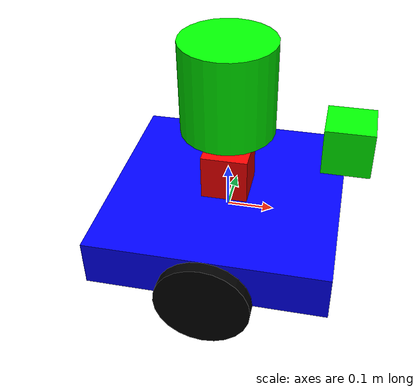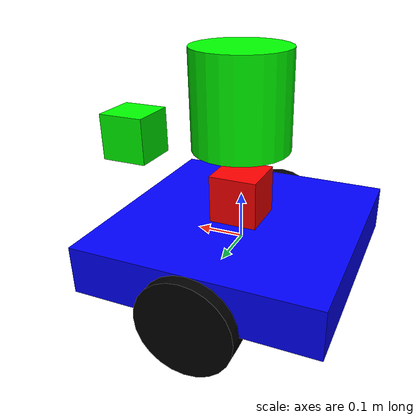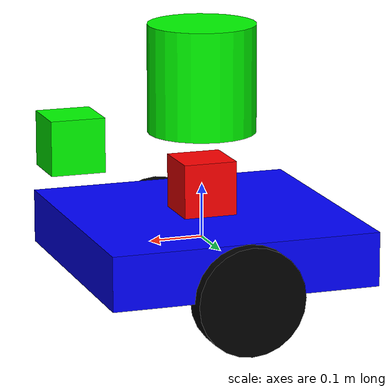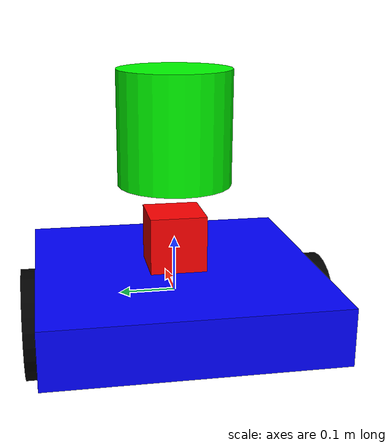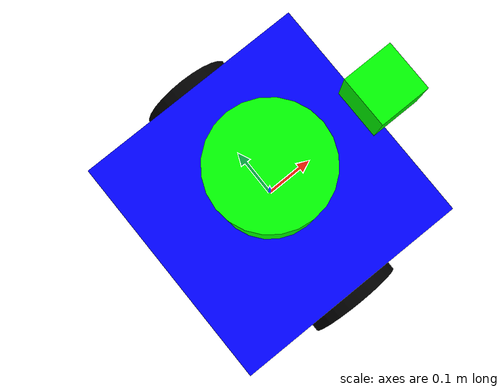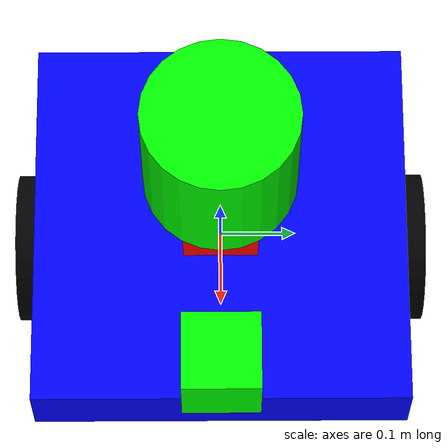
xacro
<?xml version="1.0"?>
<robot xmlns:xacro="http://www.ros.org/wiki/xacro" name="mj_robot">

  <!-- Define default materials -->
  <material name="blue">
    <color rgba="0 0 1 1"/>
  </material>
  <material name="black">
    <color rgba="0 0 0 1"/>
  </material>
  <material name="green">
    <color rgba="0 1 0 1"/>
  </material>
  <material name="red">
    <color rgba="1 0 0 1"/>
  </material>

  <!-- Define a macro for a wheel -->
  <xacro:macro name="wheel" params="name color xyz rpy">
    <link name="${name}">
      <visual>
        <geometry>
          <cylinder radius="0.1" length="0.05"/>
        </geometry>
        <material name="${color}"/>
      </visual>
      <collision>
        <geometry>
          <cylinder radius="0.1" length="0.05"/>
        </geometry>
      </collision>
    </link>
    <joint name="base_to_${name}" type="continuous">
      <parent link="base_link"/>
      <child link="${name}"/>
      <origin xyz="${xyz}" rpy="${rpy}"/>
      <axis xyz="0 1 0"/> <!-- Rotate around Y-axis -->
    </joint>
  </xacro:macro>

  <!-- Base link -->
  <link name="base_link">
    <visual>
      <geometry>
        <box size="0.5 0.5 0.1"/>
      </geometry>
      <material name="blue"/>
    </visual>
    <collision>
      <geometry>
        <box size="0.5 0.5 0.1"/>
      </geometry>
    </collision>
  </link>

  <!-- Use the wheel macro for left and right wheels -->
  <xacro:wheel name="left_wheel" color="black" xyz="0 0.25 -0.05" rpy="1.5708 0 0"/>
  <xacro:wheel name="right_wheel" color="black" xyz="0 -0.25 -0.05" rpy="1.5708 0 0"/>

  <!-- Camera -->
  <link name="camera">
    <visual>
      <geometry>
        <box size="0.1 0.1 0.1"/>
      </geometry>
      <material name="green"/>
    </visual>
    <collision>
      <geometry>
        <box size="0.1 0.1 0.1"/>
      </geometry>
    </collision>
  </link>
  <joint name="base_to_camera" type="fixed">
    <parent link="base_link"/>
    <child link="camera"/>
    <origin xyz="0.25 0 0.2" rpy="0 0 0"/>
  </joint>

  <!-- LiDAR sensor -->
  <link name="lidar_link">
    <visual>
      <geometry>
        <cylinder radius="0.1" length="0.2"/>
      </geometry>
      <material name="green"/>
    </visual>
    <collision>
      <geometry>
        <cylinder radius="0.1" length="0.2"/>
      </geometry>
    </collision>
  </link>
  <joint name="base_to_lidar" type="fixed">
    <parent link="base_link"/>
    <child link="lidar_link"/>
    <origin xyz="0 0 0.3" rpy="0 0 0"/>
  </joint>

  <!-- IMU sensor -->
  <link name="imu_link">
    <visual>
      <geometry>
        <box size="0.1 0.1 0.1"/>
      </geometry>
      <material name="red"/>
    </visual>
    <collision>
      <geometry>
        <box size="0.1 0.1 0.1"/>
      </geometry>
    </collision>
  </link>
  <joint name="base_to_imu" type="fixed">
    <parent link="base_link"/>
    <child link="imu_link"/>
    <origin xyz="0 0 0.1" rpy="0 0 0"/>
  </joint>

</robot>
